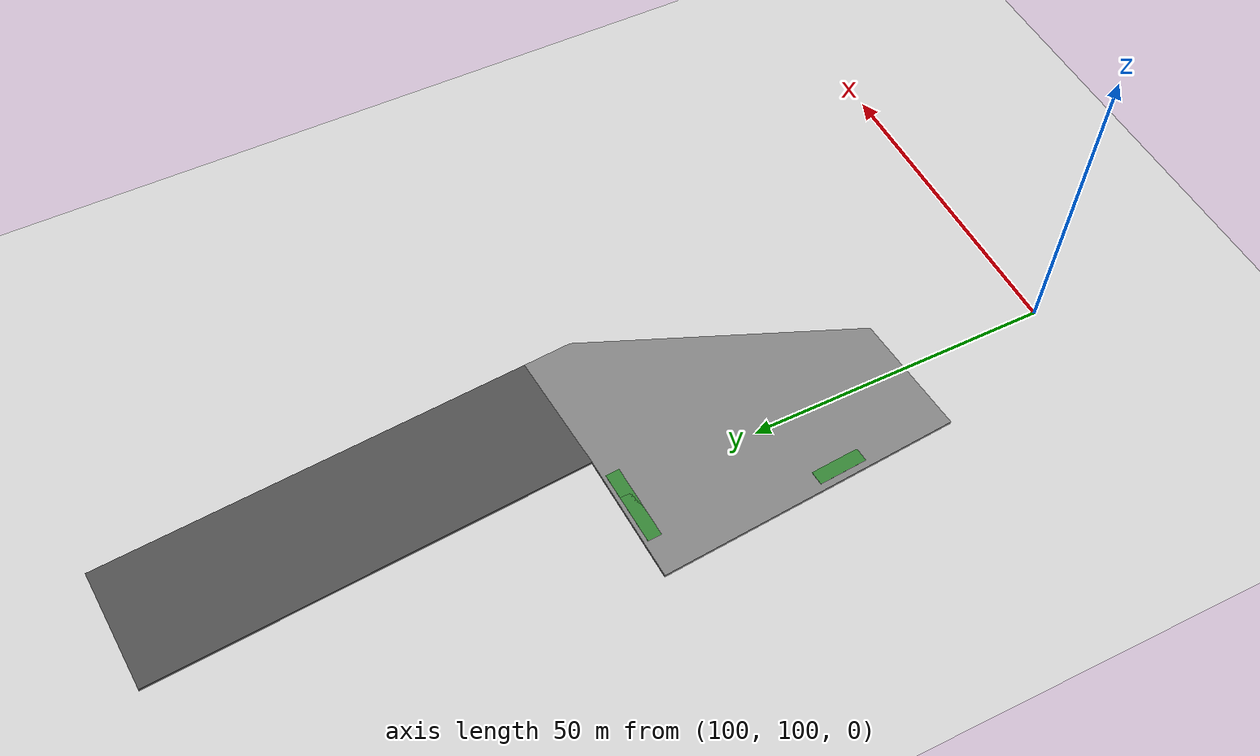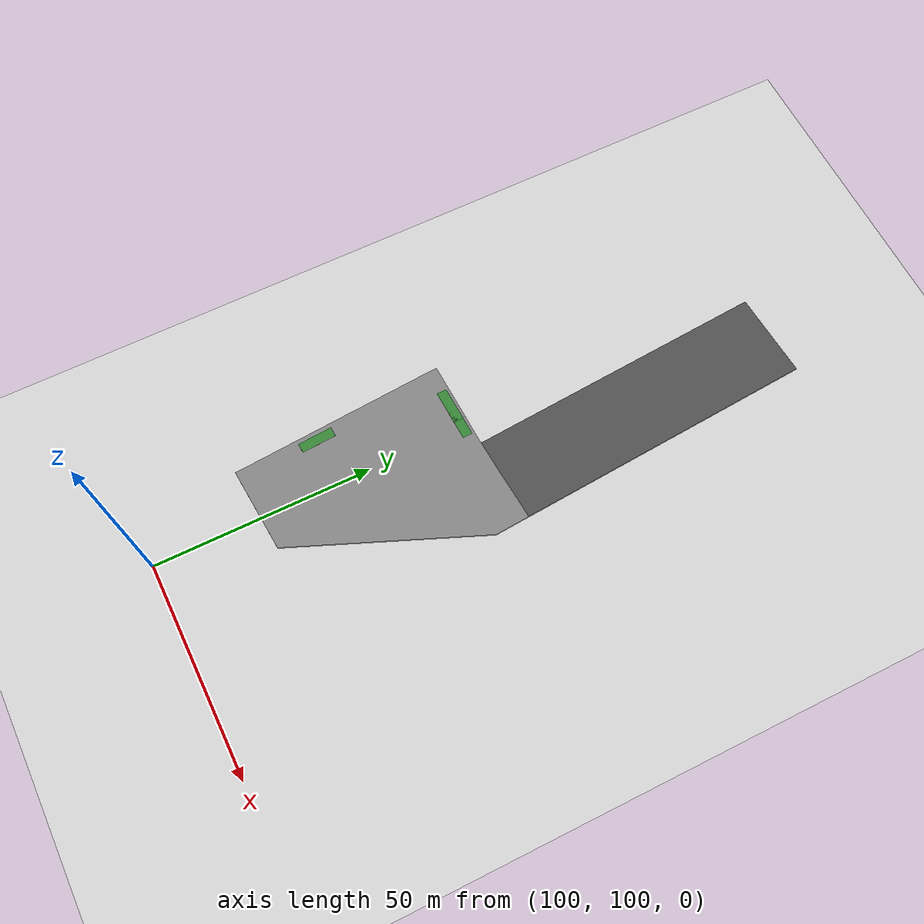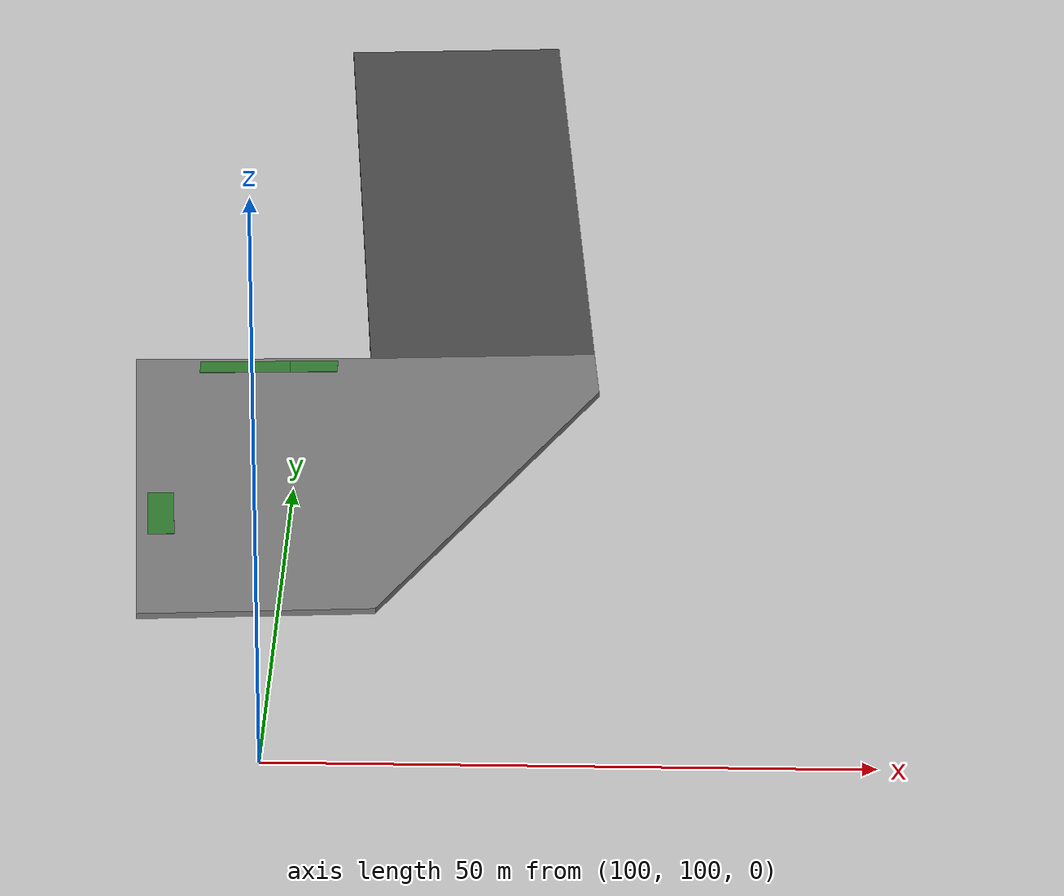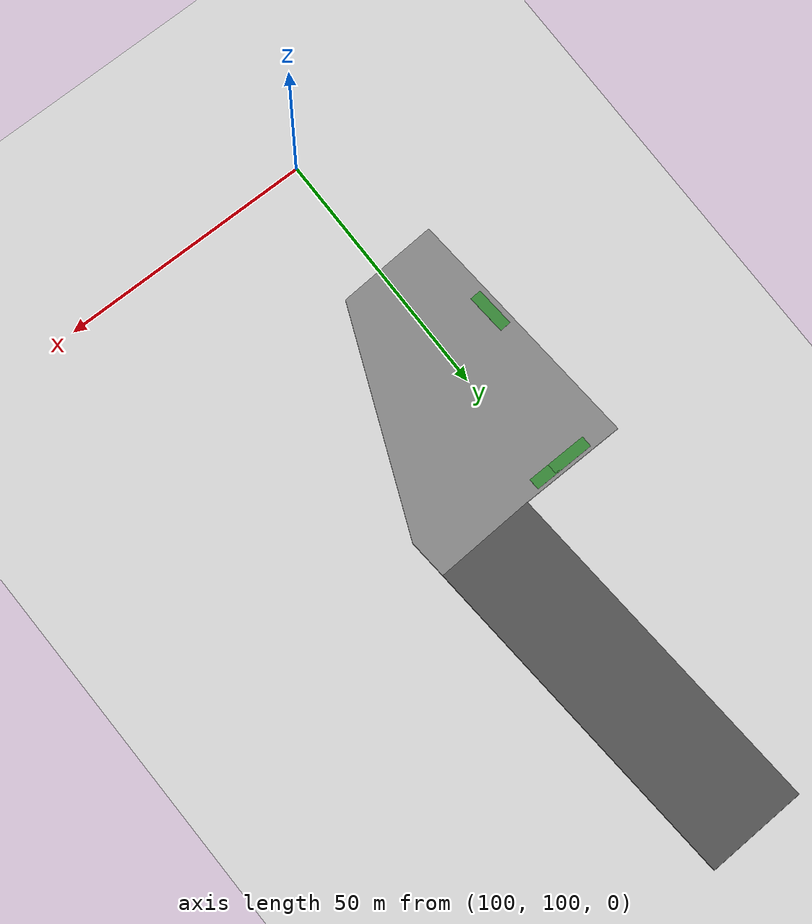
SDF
<sdf version="1.7">
 <world name="default">
  <model name="ground_plane">
   <static>1</static>
   <link name="link">
    <collision name="collision">
     <geometry><plane><normal>0 0 1</normal><size>100 100</size></plane></geometry>
     <surface><friction><ode><mu>100</mu><mu2>50</mu2></ode></friction></surface>
    </collision>
    <visual name="visual">
     <cast_shadows>0</cast_shadows>
     <geometry><plane><normal>0 0 1</normal><size>100 100</size></plane></geometry>
     <material>
      <script><uri>file://media/materials/scripts/gazebo.material</uri><name>Gazebo/Grey</name></script>
     </material>
    </visual>
   </link>
  </model>
  <model name="asphalt_plane_1">
   <link name="link">
    <pose>0 0 1.015 0 -0 0</pose>
    <inertial>
     <mass>1</mass>
     <inertia><ixx>1</ixx><ixy>0</ixy><ixz>0</ixz><iyy>1</iyy><iyz>0</iyz><izz>1</izz></inertia>
    </inertial>
    <visual name="visual">
     <cast_shadows>0</cast_shadows>
     <geometry><box><size>70 20 0.5</size></box></geometry>
     <material>
      <script>
       <uri>model://asphalt_plane/materials/scripts</uri>
       <uri>model://asphalt_plane/materials/textures</uri>
       <name>vrc/asphalt</name>
      </script>
      <shader type="pixel"><normal_map>__default__</normal_map></shader>
      <ambient>0.5 0.5 0.5 1</ambient>
      <diffuse>0.5 0.5 0.5 1</diffuse>
      <specular>0.2 0.2 0.2 1</specular>
      <emissive>0 0 0 1</emissive>
     </material>
    </visual>
    <collision name="collision">
     <geometry><box><size>70 20 0.5</size></box></geometry>
     <surface>
      <friction>
       <ode><mu>1</mu><mu2>1</mu2><fdir1>0 0 0</fdir1><slip1>0.001</slip1><slip2>1e-05</slip2></ode>
       <torsional>
        <coefficient>1</coefficient>
        <patch_radius>0</patch_radius>
        <surface_radius>0</surface_radius>
        <use_patch_radius>1</use_patch_radius>
        <ode><slip>0</slip></ode>
       </torsional>
      </friction>
      <bounce><restitution_coefficient>0</restitution_coefficient><threshold>1e+06</threshold></bounce>
      <contact>
       <collide_without_contact>0</collide_without_contact>
       <collide_without_contact_bitmask>1</collide_without_contact_bitmask>
       <collide_bitmask>1</collide_bitmask>
       <ode>
        <soft_cfm>0</soft_cfm>
        <soft_erp>0.2</soft_erp>
        <kp>1e+13</kp>
        <kd>1</kd>
        <max_vel>0.01</max_vel>
        <min_depth>0</min_depth>
       </ode>
       <bullet>
        <split_impulse>1</split_impulse>
        <split_impulse_penetration_threshold>-0.01</split_impulse_penetration_threshold>
        <soft_cfm>0</soft_cfm>
        <soft_erp>0.2</soft_erp>
        <kp>1e+13</kp>
        <kd>1</kd>
       </bullet>
      </contact>
     </surface>
    </collision>
   </link>
   <static>1</static>
   <pose>113.068 209.915 0 0 0 -1.5</pose>
  </model>
  <model name="asphalt_plane_angle_section_0">
   <link name="link">
    <inertial>
     <mass>1</mass>
     <inertia><ixx>1</ixx><ixy>0</ixy><ixz>0</ixz><iyy>1</iyy><iyz>0</iyz><izz>1</izz></inertia>
    </inertial>
    <pose>0 0 1.015 0 0 -1.4967</pose>
    <visual name="visual">
     <geometry>
      <mesh>
       <uri>/home/albert/marinero_ws/src/marinero_simulations/models/asphalt_plane_angle_section/meshes/asphalt_plane_angle_section.dae</uri>
       <scale>1 1 5</scale>
      </mesh>
     </geometry>
     <material>
      <script>
       <uri>/home/albert/marinero_ws/src/marinero_simulations/models/asphalt_plane_angle_section/materials/scripts</uri>
       <uri>/home/albert/marinero_ws/src/marinero_simulations/models/asphalt_plane_angle_section/materials/textures</uri>
       <name>asphalt/texture</name>
      </script>
      <shader type="pixel"><normal_map>__default__</normal_map></shader>
      <ambient>0.5 0.5 0.5 1</ambient>
      <diffuse>0.5 0.5 0.5 1</diffuse>
      <specular>0.2 0.2 0.2 1</specular>
      <emissive>0 0 0 1</emissive>
     </material>
    </visual>
    <collision name="collision">
     <geometry>
      <mesh>
       <uri>/home/albert/marinero_ws/src/marinero_simulations/models/asphalt_plane_angle_section/meshes/asphalt_plane_angle_section.dae</uri>
       <scale>1 1 5</scale>
      </mesh>
     </geometry>
     <surface>
      <friction>
       <ode><mu>1</mu><mu2>1</mu2><fdir1>0 0 0</fdir1><slip1>0.001</slip1><slip2>1e-05</slip2></ode>
       <torsional>
        <coefficient>1</coefficient>
        <patch_radius>0</patch_radius>
        <surface_radius>0</surface_radius>
        <use_patch_radius>1</use_patch_radius>
        <ode><slip>0</slip></ode>
       </torsional>
      </friction>
      <bounce><restitution_coefficient>0</restitution_coefficient><threshold>1e+06</threshold></bounce>
      <contact>
       <collide_without_contact>0</collide_without_contact>
       <collide_without_contact_bitmask>1</collide_without_contact_bitmask>
       <collide_bitmask>1</collide_bitmask>
       <ode>
        <soft_cfm>0</soft_cfm>
        <soft_erp>0.2</soft_erp>
        <kp>1e+13</kp>
        <kd>1</kd>
        <max_vel>0.01</max_vel>
        <min_depth>0</min_depth>
       </ode>
       <bullet>
        <split_impulse>1</split_impulse>
        <split_impulse_penetration_threshold>-0.01</split_impulse_penetration_threshold>
        <soft_cfm>0</soft_cfm>
        <soft_erp>0.2</soft_erp>
        <kp>1e+13</kp>
        <kd>1</kd>
       </bullet>
      </contact>
     </surface>
    </collision>
   </link>
   <static>1</static>
   <pose>96.4113 149.332 0 0 -0 0</pose>
  </model>
  <model name="sailboat_1_clone_1_clone_clone_clone">
   <static>1</static>
   <link name="link">
    <visual name="visual">
     <pose>0 0 1 0 0 -1.507</pose>
     <geometry>
      <mesh>
       <uri>/home/albert/marinero_ws/src/marinero_simulations/models/sailboat_1/meshes/Sailboat.stl</uri>
       <scale>1.8 1.8 1.8</scale>
      </mesh>
     </geometry>
     <material>
      <script><uri>file://media/materials/scripts/gazebo.material</uri><name>Gazebo/Grey</name></script>
     </material>
    </visual>
    <collision name="collision">
     <pose>0 0 1 0 0 -1.507</pose>
     <geometry>
      <mesh>
       <uri>/home/albert/marinero_ws/src/marinero_simulations/models/sailboat_1/meshes/Sailboat.stl</uri>
       <scale>1.8 1.8 1.8</scale>
      </mesh>
     </geometry>
    </collision>
   </link>
   <pose>92.1811 205.663 0 0 -0 1.5819</pose>
  </model>
  <model name="grass_plane_SM_1_clone_clone_clone">
   <link name="link">
    <pose>0 0 1.255 0 0 -1.5905</pose>
    <inertial>
     <mass>1</mass>
     <inertia><ixx>1</ixx><ixy>0</ixy><ixz>0</ixz><iyy>1</iyy><iyz>0</iyz><izz>1</izz></inertia>
    </inertial>
    <visual name="visual">
     <cast_shadows>0</cast_shadows>
     <geometry><box><size>8 2.25 0.1</size></box></geometry>
     <material>
      <script>
       <uri>/home/albert/marinero_ws/src/marinero_simulations/models/grass_plane_SM/materials/scripts</uri>
       <uri>/home/albert/marinero_ws/src/marinero_simulations/models/grass_plane_SM/materials/textures/grass.jpg</uri>
       <name>grass_SM/texture</name>
      </script>
      <shader type="pixel"><normal_map>__default__</normal_map></shader>
      <ambient>0.2 0.5 0.2 1</ambient>
      <diffuse>0.2 0.5 0.2 1</diffuse>
      <specular>0.2 0.2 0.2 1</specular>
      <emissive>0 0 0 1</emissive>
     </material>
    </visual>
    <collision name="collision">
     <geometry><box><size>8 2.25 0.1</size></box></geometry>
     <surface>
      <friction>
       <ode><mu>1</mu><mu2>1</mu2><fdir1>0 0 0</fdir1><slip1>0.001</slip1><slip2>1e-05</slip2></ode>
       <torsional>
        <coefficient>1</coefficient>
        <patch_radius>0</patch_radius>
        <surface_radius>0</surface_radius>
        <use_patch_radius>1</use_patch_radius>
        <ode><slip>0</slip></ode>
       </torsional>
      </friction>
      <bounce><restitution_coefficient>0</restitution_coefficient><threshold>1e+06</threshold></bounce>
      <contact>
       <collide_without_contact>0</collide_without_contact>
       <collide_without_contact_bitmask>1</collide_without_contact_bitmask>
       <collide_bitmask>1</collide_bitmask>
       <ode>
        <soft_cfm>0</soft_cfm>
        <soft_erp>0.2</soft_erp>
        <kp>1e+13</kp>
        <kd>1</kd>
        <max_vel>0.01</max_vel>
        <min_depth>0</min_depth>
       </ode>
       <bullet>
        <split_impulse>1</split_impulse>
        <split_impulse_penetration_threshold>-0.01</split_impulse_penetration_threshold>
        <soft_cfm>0</soft_cfm>
        <soft_erp>0.2</soft_erp>
        <kp>1e+13</kp>
        <kd>1</kd>
       </bullet>
      </contact>
     </surface>
    </collision>
   </link>
   <static>1</static>
   <pose>98.6917 172.332 0 0 0 -1.51</pose>
  </model>
  <model name="grass_plane_SM_1_clone_clone_clone_0">
   <link name="link">
    <pose>0 0 1.255 0 0 -1.5905</pose>
    <inertial>
     <mass>1</mass>
     <inertia><ixx>1</ixx><ixy>0</ixy><ixz>0</ixz><iyy>1</iyy><iyz>0</iyz><izz>1</izz></inertia>
    </inertial>
    <visual name="visual">
     <cast_shadows>0</cast_shadows>
     <geometry><box><size>8 2.25 0.1</size></box></geometry>
     <material>
      <script>
       <uri>/home/albert/marinero_ws/src/marinero_simulations/models/grass_plane_SM/materials/scripts</uri>
       <uri>/home/albert/marinero_ws/src/marinero_simulations/models/grass_plane_SM/materials/textures/grass.jpg</uri>
       <name>grass_SM/texture</name>
      </script>
      <shader type="pixel"><normal_map>__default__</normal_map></shader>
      <ambient>0.2 0.5 0.2 1</ambient>
      <diffuse>0.2 0.5 0.2 1</diffuse>
      <specular>0.2 0.2 0.2 1</specular>
      <emissive>0 0 0 1</emissive>
     </material>
    </visual>
    <collision name="collision">
     <geometry><box><size>8 2.25 0.1</size></box></geometry>
     <surface>
      <friction>
       <ode><mu>1</mu><mu2>1</mu2><fdir1>0 0 0</fdir1><slip1>0.001</slip1><slip2>1e-05</slip2></ode>
       <torsional>
        <coefficient>1</coefficient>
        <patch_radius>0</patch_radius>
        <surface_radius>0</surface_radius>
        <use_patch_radius>1</use_patch_radius>
        <ode><slip>0</slip></ode>
       </torsional>
      </friction>
      <bounce><restitution_coefficient>0</restitution_coefficient><threshold>1e+06</threshold></bounce>
      <contact>
       <collide_without_contact>0</collide_without_contact>
       <collide_without_contact_bitmask>1</collide_without_contact_bitmask>
       <collide_bitmask>1</collide_bitmask>
       <ode>
        <soft_cfm>0</soft_cfm>
        <soft_erp>0.2</soft_erp>
        <kp>1e+13</kp>
        <kd>1</kd>
        <max_vel>0.01</max_vel>
        <min_depth>0</min_depth>
       </ode>
       <bullet>
        <split_impulse>1</split_impulse>
        <split_impulse_penetration_threshold>-0.01</split_impulse_penetration_threshold>
        <soft_cfm>0</soft_cfm>
        <soft_erp>0.2</soft_erp>
        <kp>1e+13</kp>
        <kd>1</kd>
       </bullet>
      </contact>
     </surface>
    </collision>
   </link>
   <static>1</static>
   <pose>94.4494 172.159 0 0 0 -1.51</pose>
  </model>
  <model name="grass_plane_SM_4_clone_clone">
   <link name="link">
    <pose>0 0 1.255 0 0 -1.5905</pose>
    <inertial>
     <mass>1</mass>
     <inertia><ixx>1</ixx><ixy>0</ixy><ixz>0</ixz><iyy>1</iyy><iyz>0</iyz><izz>1</izz></inertia>
    </inertial>
    <visual name="visual">
     <cast_shadows>0</cast_shadows>
     <geometry><box><size>8 2.25 0.1</size></box></geometry>
     <material>
      <script>
       <uri>/home/albert/marinero_ws/src/marinero_simulations/models/grass_plane_SM/materials/scripts</uri>
       <uri>/home/albert/marinero_ws/src/marinero_simulations/models/grass_plane_SM/materials/textures/grass.jpg</uri>
       <name>grass_SM/texture</name>
      </script>
      <shader type="pixel"><normal_map>__default__</normal_map></shader>
      <ambient>0.2 0.5 0.2 1</ambient>
      <diffuse>0.2 0.5 0.2 1</diffuse>
      <specular>0.2 0.2 0.2 1</specular>
      <emissive>0 0 0 1</emissive>
     </material>
    </visual>
    <collision name="collision">
     <geometry><box><size>8 2.25 0.1</size></box></geometry>
     <surface>
      <friction>
       <ode><mu>1</mu><mu2>1</mu2><fdir1>0 0 0</fdir1><slip1>0.001</slip1><slip2>1e-05</slip2></ode>
       <torsional>
        <coefficient>1</coefficient>
        <patch_radius>0</patch_radius>
        <surface_radius>0</surface_radius>
        <use_patch_radius>1</use_patch_radius>
        <ode><slip>0</slip></ode>
       </torsional>
      </friction>
      <bounce><restitution_coefficient>0</restitution_coefficient><threshold>1e+06</threshold></bounce>
      <contact>
       <collide_without_contact>0</collide_without_contact>
       <collide_without_contact_bitmask>1</collide_without_contact_bitmask>
       <collide_bitmask>1</collide_bitmask>
       <ode>
        <soft_cfm>0</soft_cfm>
        <soft_erp>0.2</soft_erp>
        <kp>1e+13</kp>
        <kd>1</kd>
        <max_vel>0.01</max_vel>
        <min_depth>0</min_depth>
       </ode>
       <bullet>
        <split_impulse>1</split_impulse>
        <split_impulse_penetration_threshold>-0.01</split_impulse_penetration_threshold>
        <soft_cfm>0</soft_cfm>
        <soft_erp>0.2</soft_erp>
        <kp>1e+13</kp>
        <kd>1</kd>
       </bullet>
      </contact>
     </surface>
    </collision>
   </link>
   <static>1</static>
   <pose>89.0232 142.561 0 0 -0 0.0925</pose>
  </model>
 </world>
</sdf>
